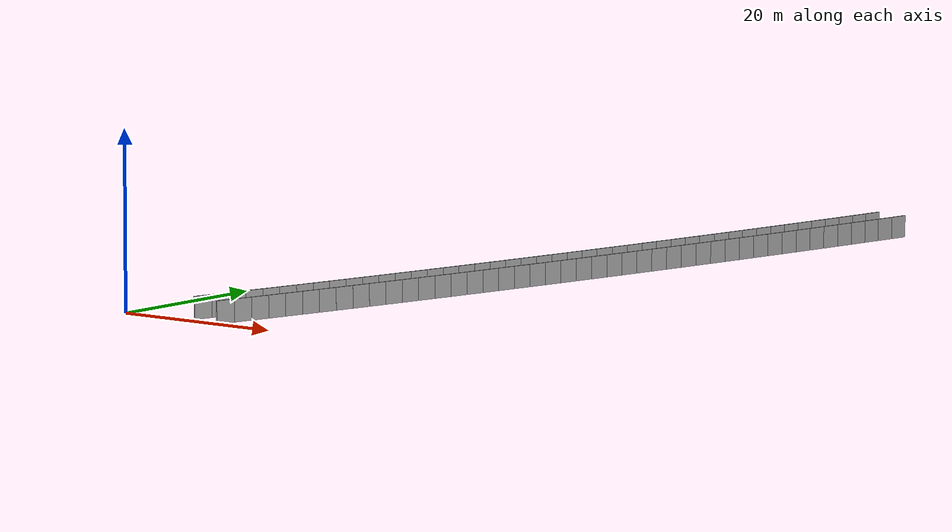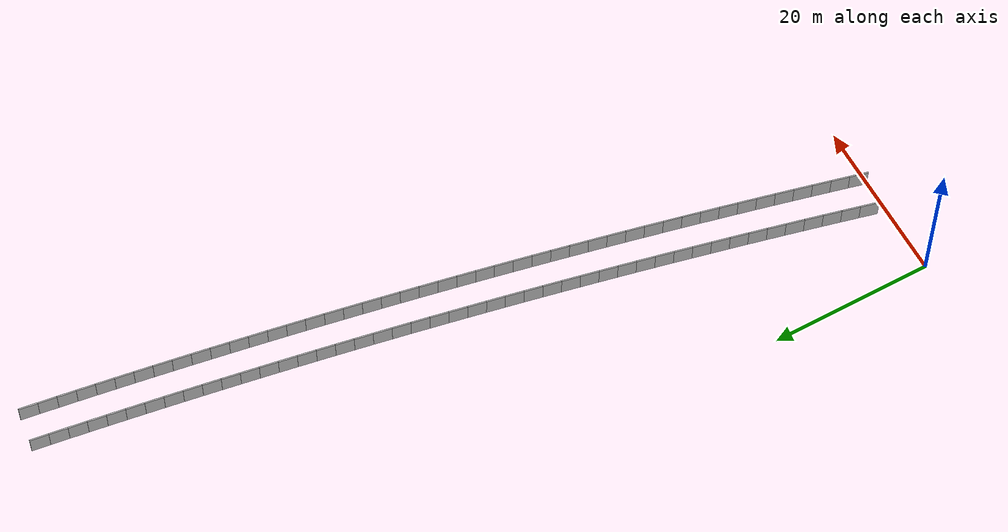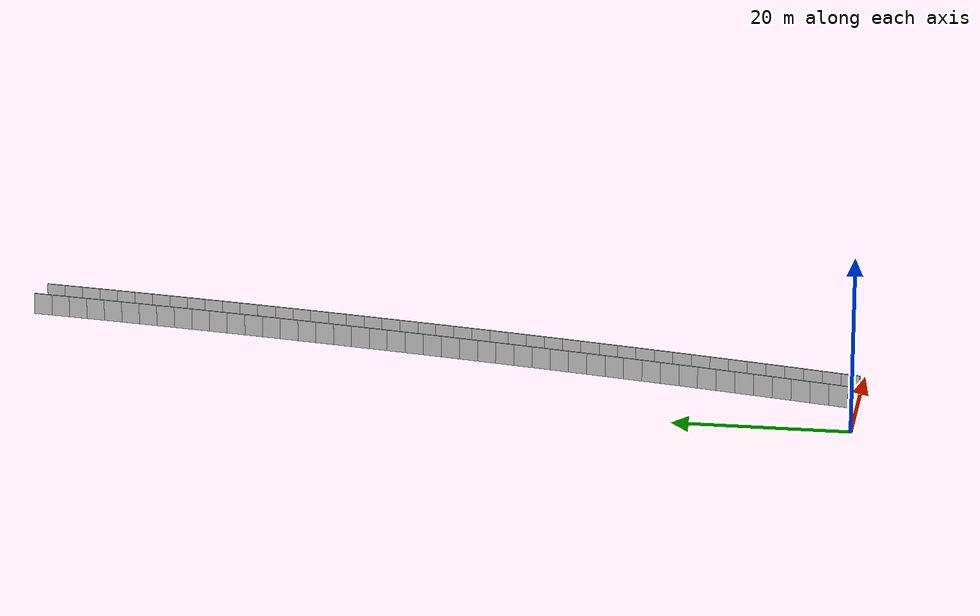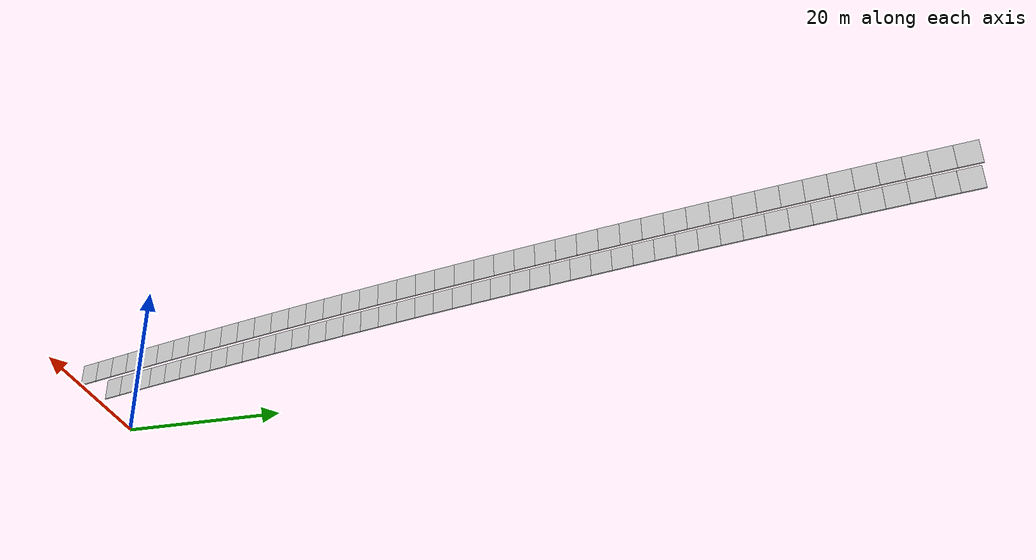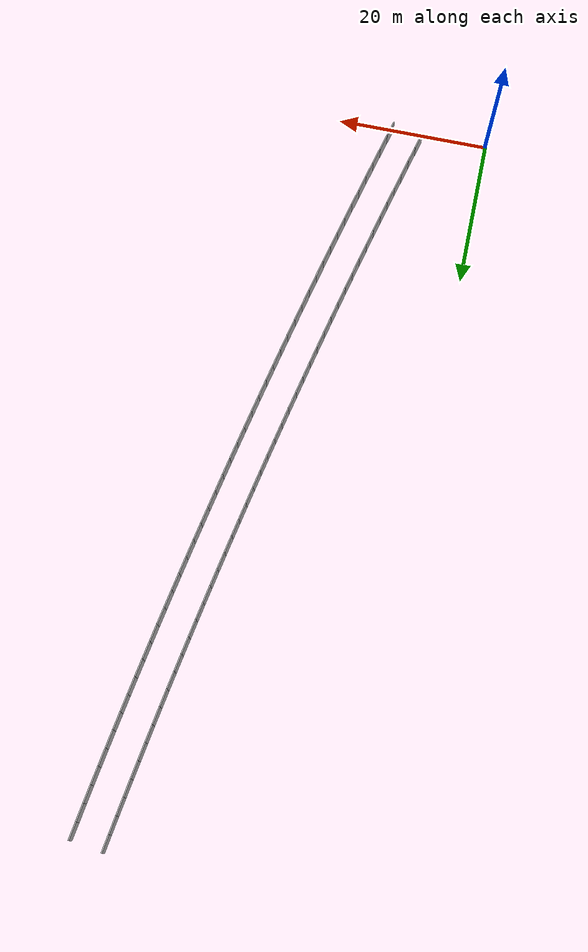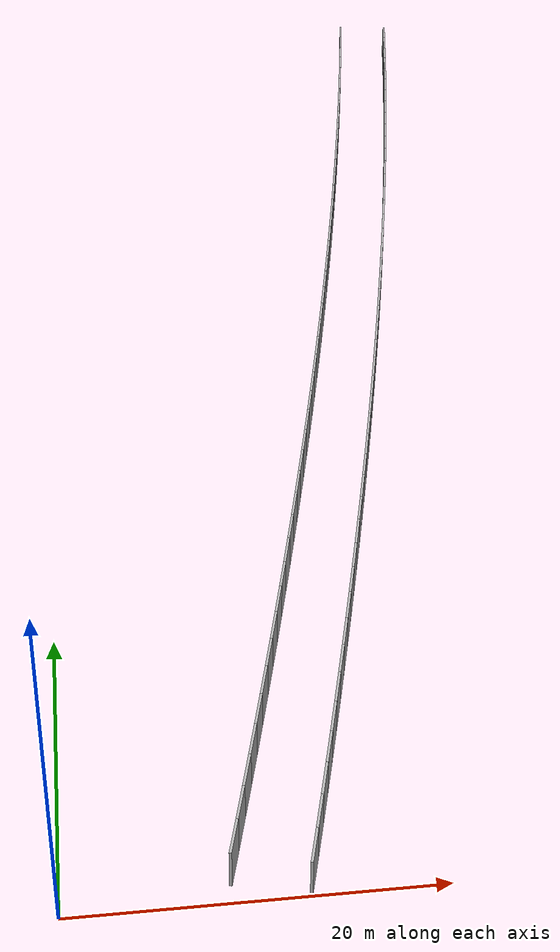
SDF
<?xml version="1.0" ?>
<sdf version="1.6">
  <model name="sps_2310">
    <pose frame="">0 0 0 0 -0 0</pose>
    <static>1</static>
    <self_collide>0</self_collide>
    <allow_auto_disable>0</allow_auto_disable>
    <link name="Wall4482">
      <kinematic>0</kinematic>
      <gravity>1</gravity>
      <self_collide>0</self_collide>
      <collision name="collision">
        <geometry>
          <box>
            <size>2.25451 0.15 2.5</size>
          </box>
        </geometry>
        <pose frame="">0 0 0 0 -0 0</pose>
      </collision>
      <visual name="visual">
        <geometry>
          <box>
            <size>2.25451 0.15 2.5</size>
          </box>
        </geometry>
        <pose frame="">0 0 0 0 -0 0</pose>
        <cast_shadows>1</cast_shadows>
        <transparency>0.0</transparency>
      </visual>
      <pose frame="">13.0137 1.14418 1.25 0 -0 1.32106</pose>
    </link>
    <link name="Wall4483">
      <kinematic>0</kinematic>
      <gravity>1</gravity>
      <self_collide>0</self_collide>
      <collision name="collision">
        <geometry>
          <box>
            <size>2.25465 0.15 2.5</size>
          </box>
        </geometry>
        <pose frame="">0 0 0 0 -0 0</pose>
      </collision>
      <visual name="visual">
        <geometry>
          <box>
            <size>2.25465 0.15 2.5</size>
          </box>
        </geometry>
        <pose frame="">0 0 0 0 -0 0</pose>
        <cast_shadows>1</cast_shadows>
        <transparency>0.0</transparency>
      </visual>
      <pose frame="">13.5683 3.32948 1.25 0 -0 1.32345</pose>
    </link>
    <link name="Wall4484">
      <kinematic>0</kinematic>
      <gravity>1</gravity>
      <self_collide>0</self_collide>
      <collision name="collision">
        <geometry>
          <box>
            <size>2.25473 0.15 2.5</size>
          </box>
        </geometry>
        <pose frame="">0 0 0 0 -0 0</pose>
      </collision>
      <visual name="visual">
        <geometry>
          <box>
            <size>2.25473 0.15 2.5</size>
          </box>
        </geometry>
        <pose frame="">0 0 0 0 -0 0</pose>
        <cast_shadows>1</cast_shadows>
        <transparency>0.0</transparency>
      </visual>
      <pose frame="">14.1178 5.51619 1.25 0 -0 1.32575</pose>
    </link>
    <link name="Wall4485">
      <kinematic>0</kinematic>
      <gravity>1</gravity>
      <self_collide>0</self_collide>
      <collision name="collision">
        <geometry>
          <box>
            <size>2.25462 0.15 2.5</size>
          </box>
        </geometry>
        <pose frame="">0 0 0 0 -0 0</pose>
      </collision>
      <visual name="visual">
        <geometry>
          <box>
            <size>2.25462 0.15 2.5</size>
          </box>
        </geometry>
        <pose frame="">0 0 0 0 -0 0</pose>
        <cast_shadows>1</cast_shadows>
        <transparency>0.0</transparency>
      </visual>
      <pose frame="">14.6621 7.70418 1.25 0 -0 1.32819</pose>
    </link>
    <link name="Wall4486">
      <kinematic>0</kinematic>
      <gravity>1</gravity>
      <self_collide>0</self_collide>
      <collision name="collision">
        <geometry>
          <box>
            <size>2.25455 0.15 2.5</size>
          </box>
        </geometry>
        <pose frame="">0 0 0 0 -0 0</pose>
      </collision>
      <visual name="visual">
        <geometry>
          <box>
            <size>2.25455 0.15 2.5</size>
          </box>
        </geometry>
        <pose frame="">0 0 0 0 -0 0</pose>
        <cast_shadows>1</cast_shadows>
        <transparency>0.0</transparency>
      </visual>
      <pose frame="">15.2011 9.89339 1.25 0 -0 1.33058</pose>
    </link>
    <link name="Wall4487">
      <kinematic>0</kinematic>
      <gravity>1</gravity>
      <self_collide>0</self_collide>
      <collision name="collision">
        <geometry>
          <box>
            <size>2.25445 0.15 2.5</size>
          </box>
        </geometry>
        <pose frame="">0 0 0 0 -0 0</pose>
      </collision>
      <visual name="visual">
        <geometry>
          <box>
            <size>2.25445 0.15 2.5</size>
          </box>
        </geometry>
        <pose frame="">0 0 0 0 -0 0</pose>
        <cast_shadows>1</cast_shadows>
        <transparency>0.0</transparency>
      </visual>
      <pose frame="">15.7349 12.0838 1.25 0 -0 1.33294</pose>
    </link>
    <link name="Wall4488">
      <kinematic>0</kinematic>
      <gravity>1</gravity>
      <self_collide>0</self_collide>
      <collision name="collision">
        <geometry>
          <box>
            <size>2.2547 0.15 2.5</size>
          </box>
        </geometry>
        <pose frame="">0 0 0 0 -0 0</pose>
      </collision>
      <visual name="visual">
        <geometry>
          <box>
            <size>2.2547 0.15 2.5</size>
          </box>
        </geometry>
        <pose frame="">0 0 0 0 -0 0</pose>
        <cast_shadows>1</cast_shadows>
        <transparency>0.0</transparency>
      </visual>
      <pose frame="">16.2635 14.2755 1.25 0 -0 1.33525</pose>
    </link>
    <link name="Wall4489">
      <kinematic>0</kinematic>
      <gravity>1</gravity>
      <self_collide>0</self_collide>
      <collision name="collision">
        <geometry>
          <box>
            <size>2.25462 0.15 2.5</size>
          </box>
        </geometry>
        <pose frame="">0 0 0 0 -0 0</pose>
      </collision>
      <visual name="visual">
        <geometry>
          <box>
            <size>2.25462 0.15 2.5</size>
          </box>
        </geometry>
        <pose frame="">0 0 0 0 -0 0</pose>
        <cast_shadows>1</cast_shadows>
        <transparency>0.0</transparency>
      </visual>
      <pose frame="">16.7871 16.4685 1.25 0 -0 1.33761</pose>
    </link>
    <link name="Wall4490">
      <kinematic>0</kinematic>
      <gravity>1</gravity>
      <self_collide>0</self_collide>
      <collision name="collision">
        <geometry>
          <box>
            <size>2.25466 0.15 2.5</size>
          </box>
        </geometry>
        <pose frame="">0 0 0 0 -0 0</pose>
      </collision>
      <visual name="visual">
        <geometry>
          <box>
            <size>2.25466 0.15 2.5</size>
          </box>
        </geometry>
        <pose frame="">0 0 0 0 -0 0</pose>
        <cast_shadows>1</cast_shadows>
        <transparency>0.0</transparency>
      </visual>
      <pose frame="">17.3054 18.6628 1.25 0 -0 1.34014</pose>
    </link>
    <link name="Wall4491">
      <kinematic>0</kinematic>
      <gravity>1</gravity>
      <self_collide>0</self_collide>
      <collision name="collision">
        <geometry>
          <box>
            <size>2.25461 0.15 2.5</size>
          </box>
        </geometry>
        <pose frame="">0 0 0 0 -0 0</pose>
      </collision>
      <visual name="visual">
        <geometry>
          <box>
            <size>2.25461 0.15 2.5</size>
          </box>
        </geometry>
        <pose frame="">0 0 0 0 -0 0</pose>
        <cast_shadows>1</cast_shadows>
        <transparency>0.0</transparency>
      </visual>
      <pose frame="">17.8184 20.8583 1.25 0 -0 1.34236</pose>
    </link>
    <link name="Wall4492">
      <kinematic>0</kinematic>
      <gravity>1</gravity>
      <self_collide>0</self_collide>
      <collision name="collision">
        <geometry>
          <box>
            <size>2.25455 0.15 2.5</size>
          </box>
        </geometry>
        <pose frame="">0 0 0 0 -0 0</pose>
      </collision>
      <visual name="visual">
        <geometry>
          <box>
            <size>2.25455 0.15 2.5</size>
          </box>
        </geometry>
        <pose frame="">0 0 0 0 -0 0</pose>
        <cast_shadows>1</cast_shadows>
        <transparency>0.0</transparency>
      </visual>
      <pose frame="">18.3263 23.0549 1.25 0 -0 1.34477</pose>
    </link>
    <link name="Wall4493">
      <kinematic>0</kinematic>
      <gravity>1</gravity>
      <self_collide>0</self_collide>
      <collision name="collision">
        <geometry>
          <box>
            <size>2.25445 0.15 2.5</size>
          </box>
        </geometry>
        <pose frame="">0 0 0 0 -0 0</pose>
      </collision>
      <visual name="visual">
        <geometry>
          <box>
            <size>2.25445 0.15 2.5</size>
          </box>
        </geometry>
        <pose frame="">0 0 0 0 -0 0</pose>
        <cast_shadows>1</cast_shadows>
        <transparency>0.0</transparency>
      </visual>
      <pose frame="">18.8288 25.2527 1.25 0 -0 1.34726</pose>
    </link>
    <link name="Wall4494">
      <kinematic>0</kinematic>
      <gravity>1</gravity>
      <self_collide>0</self_collide>
      <collision name="collision">
        <geometry>
          <box>
            <size>2.25479 0.15 2.5</size>
          </box>
        </geometry>
        <pose frame="">0 0 0 0 -0 0</pose>
      </collision>
      <visual name="visual">
        <geometry>
          <box>
            <size>2.25479 0.15 2.5</size>
          </box>
        </geometry>
        <pose frame="">0 0 0 0 -0 0</pose>
        <cast_shadows>1</cast_shadows>
        <transparency>0.0</transparency>
      </visual>
      <pose frame="">19.326 27.4518 1.25 0 -0 1.34955</pose>
    </link>
    <link name="Wall4495">
      <kinematic>0</kinematic>
      <gravity>1</gravity>
      <self_collide>0</self_collide>
      <collision name="collision">
        <geometry>
          <box>
            <size>2.25461 0.15 2.5</size>
          </box>
        </geometry>
        <pose frame="">0 0 0 0 -0 0</pose>
      </collision>
      <visual name="visual">
        <geometry>
          <box>
            <size>2.25461 0.15 2.5</size>
          </box>
        </geometry>
        <pose frame="">0 0 0 0 -0 0</pose>
        <cast_shadows>1</cast_shadows>
        <transparency>0.0</transparency>
      </visual>
      <pose frame="">19.8183 29.6521 1.25 0 -0 1.35189</pose>
    </link>
    <link name="Wall4496">
      <kinematic>0</kinematic>
      <gravity>1</gravity>
      <self_collide>0</self_collide>
      <collision name="collision">
        <geometry>
          <box>
            <size>2.25461 0.15 2.5</size>
          </box>
        </geometry>
        <pose frame="">0 0 0 0 -0 0</pose>
      </collision>
      <visual name="visual">
        <geometry>
          <box>
            <size>2.25461 0.15 2.5</size>
          </box>
        </geometry>
        <pose frame="">0 0 0 0 -0 0</pose>
        <cast_shadows>1</cast_shadows>
        <transparency>0.0</transparency>
      </visual>
      <pose frame="">20.3053 31.8535 1.25 0 -0 1.35427</pose>
    </link>
    <link name="Wall4497">
      <kinematic>0</kinematic>
      <gravity>1</gravity>
      <self_collide>0</self_collide>
      <collision name="collision">
        <geometry>
          <box>
            <size>2.25469 0.15 2.5</size>
          </box>
        </geometry>
        <pose frame="">0 0 0 0 -0 0</pose>
      </collision>
      <visual name="visual">
        <geometry>
          <box>
            <size>2.25469 0.15 2.5</size>
          </box>
        </geometry>
        <pose frame="">0 0 0 0 -0 0</pose>
        <cast_shadows>1</cast_shadows>
        <transparency>0.0</transparency>
      </visual>
      <pose frame="">20.787 34.0561 1.25 0 -0 1.35663</pose>
    </link>
    <link name="Wall4498">
      <kinematic>0</kinematic>
      <gravity>1</gravity>
      <self_collide>0</self_collide>
      <collision name="collision">
        <geometry>
          <box>
            <size>2.25454 0.15 2.5</size>
          </box>
        </geometry>
        <pose frame="">0 0 0 0 -0 0</pose>
      </collision>
      <visual name="visual">
        <geometry>
          <box>
            <size>2.25454 0.15 2.5</size>
          </box>
        </geometry>
        <pose frame="">0 0 0 0 -0 0</pose>
        <cast_shadows>1</cast_shadows>
        <transparency>0.0</transparency>
      </visual>
      <pose frame="">21.2634 36.2598 1.25 0 -0 1.35914</pose>
    </link>
    <link name="Wall4499">
      <kinematic>0</kinematic>
      <gravity>1</gravity>
      <self_collide>0</self_collide>
      <collision name="collision">
        <geometry>
          <box>
            <size>2.25461 0.15 2.5</size>
          </box>
        </geometry>
        <pose frame="">0 0 0 0 -0 0</pose>
      </collision>
      <visual name="visual">
        <geometry>
          <box>
            <size>2.25461 0.15 2.5</size>
          </box>
        </geometry>
        <pose frame="">0 0 0 0 -0 0</pose>
        <cast_shadows>1</cast_shadows>
        <transparency>0.0</transparency>
      </visual>
      <pose frame="">21.7345 38.4646 1.25 0 -0 1.36144</pose>
    </link>
    <link name="Wall4500">
      <kinematic>0</kinematic>
      <gravity>1</gravity>
      <self_collide>0</self_collide>
      <collision name="collision">
        <geometry>
          <box>
            <size>2.25452 0.15 2.5</size>
          </box>
        </geometry>
        <pose frame="">0 0 0 0 -0 0</pose>
      </collision>
      <visual name="visual">
        <geometry>
          <box>
            <size>2.25452 0.15 2.5</size>
          </box>
        </geometry>
        <pose frame="">0 0 0 0 -0 0</pose>
        <cast_shadows>1</cast_shadows>
        <transparency>0.0</transparency>
      </visual>
      <pose frame="">22.2004 40.6705 1.25 0 -0 1.36387</pose>
    </link>
    <link name="Wall4501">
      <kinematic>0</kinematic>
      <gravity>1</gravity>
      <self_collide>0</self_collide>
      <collision name="collision">
        <geometry>
          <box>
            <size>2.25488 0.15 2.5</size>
          </box>
        </geometry>
        <pose frame="">0 0 0 0 -0 0</pose>
      </collision>
      <visual name="visual">
        <geometry>
          <box>
            <size>2.25488 0.15 2.5</size>
          </box>
        </geometry>
        <pose frame="">0 0 0 0 -0 0</pose>
        <cast_shadows>1</cast_shadows>
        <transparency>0.0</transparency>
      </visual>
      <pose frame="">22.6612 42.8776 1.25 0 -0 1.36614</pose>
    </link>
    <link name="Wall4502">
      <kinematic>0</kinematic>
      <gravity>1</gravity>
      <self_collide>0</self_collide>
      <collision name="collision">
        <geometry>
          <box>
            <size>2.25449 0.15 2.5</size>
          </box>
        </geometry>
        <pose frame="">0 0 0 0 -0 0</pose>
      </collision>
      <visual name="visual">
        <geometry>
          <box>
            <size>2.25449 0.15 2.5</size>
          </box>
        </geometry>
        <pose frame="">0 0 0 0 -0 0</pose>
        <cast_shadows>1</cast_shadows>
        <transparency>0.0</transparency>
      </visual>
      <pose frame="">23.1167 45.0858 1.25 0 -0 1.3686</pose>
    </link>
    <link name="Wall4503">
      <kinematic>0</kinematic>
      <gravity>1</gravity>
      <self_collide>0</self_collide>
      <collision name="collision">
        <geometry>
          <box>
            <size>2.25448 0.15 2.5</size>
          </box>
        </geometry>
        <pose frame="">0 0 0 0 -0 0</pose>
      </collision>
      <visual name="visual">
        <geometry>
          <box>
            <size>2.25448 0.15 2.5</size>
          </box>
        </geometry>
        <pose frame="">0 0 0 0 -0 0</pose>
        <cast_shadows>1</cast_shadows>
        <transparency>0.0</transparency>
      </visual>
      <pose frame="">23.5669 47.2949 1.25 0 -0 1.37092</pose>
    </link>
    <link name="Wall4504">
      <kinematic>0</kinematic>
      <gravity>1</gravity>
      <self_collide>0</self_collide>
      <collision name="collision">
        <geometry>
          <box>
            <size>2.25486 0.15 2.5</size>
          </box>
        </geometry>
        <pose frame="">0 0 0 0 -0 0</pose>
      </collision>
      <visual name="visual">
        <geometry>
          <box>
            <size>2.25486 0.15 2.5</size>
          </box>
        </geometry>
        <pose frame="">0 0 0 0 -0 0</pose>
        <cast_shadows>1</cast_shadows>
        <transparency>0.0</transparency>
      </visual>
      <pose frame="">24.012 49.5052 1.25 0 -0 1.37324</pose>
    </link>
    <link name="Wall4505">
      <kinematic>0</kinematic>
      <gravity>1</gravity>
      <self_collide>0</self_collide>
      <collision name="collision">
        <geometry>
          <box>
            <size>2.25437 0.15 2.5</size>
          </box>
        </geometry>
        <pose frame="">0 0 0 0 -0 0</pose>
      </collision>
      <visual name="visual">
        <geometry>
          <box>
            <size>2.25437 0.15 2.5</size>
          </box>
        </geometry>
        <pose frame="">0 0 0 0 -0 0</pose>
        <cast_shadows>1</cast_shadows>
        <transparency>0.0</transparency>
      </visual>
      <pose frame="">24.4517 51.7165 1.25 0 -0 1.37571</pose>
    </link>
    <link name="Wall4506">
      <kinematic>0</kinematic>
      <gravity>1</gravity>
      <self_collide>0</self_collide>
      <collision name="collision">
        <geometry>
          <box>
            <size>2.25475 0.15 2.5</size>
          </box>
        </geometry>
        <pose frame="">0 0 0 0 -0 0</pose>
      </collision>
      <visual name="visual">
        <geometry>
          <box>
            <size>2.25475 0.15 2.5</size>
          </box>
        </geometry>
        <pose frame="">0 0 0 0 -0 0</pose>
        <cast_shadows>1</cast_shadows>
        <transparency>0.0</transparency>
      </visual>
      <pose frame="">24.8862 53.9288 1.25 0 -0 1.37809</pose>
    </link>
    <link name="Wall4507">
      <kinematic>0</kinematic>
      <gravity>1</gravity>
      <self_collide>0</self_collide>
      <collision name="collision">
        <geometry>
          <box>
            <size>2.25467 0.15 2.5</size>
          </box>
        </geometry>
        <pose frame="">0 0 0 0 -0 0</pose>
      </collision>
      <visual name="visual">
        <geometry>
          <box>
            <size>2.25467 0.15 2.5</size>
          </box>
        </geometry>
        <pose frame="">0 0 0 0 -0 0</pose>
        <cast_shadows>1</cast_shadows>
        <transparency>0.0</transparency>
      </visual>
      <pose frame="">25.3153 56.1423 1.25 0 -0 1.38054</pose>
    </link>
    <link name="Wall4508">
      <kinematic>0</kinematic>
      <gravity>1</gravity>
      <self_collide>0</self_collide>
      <collision name="collision">
        <geometry>
          <box>
            <size>2.25451 0.15 2.5</size>
          </box>
        </geometry>
        <pose frame="">0 0 0 0 -0 0</pose>
      </collision>
      <visual name="visual">
        <geometry>
          <box>
            <size>2.25451 0.15 2.5</size>
          </box>
        </geometry>
        <pose frame="">0 0 0 0 -0 0</pose>
        <cast_shadows>1</cast_shadows>
        <transparency>0.0</transparency>
      </visual>
      <pose frame="">25.7392 58.3567 1.25 0 -0 1.38278</pose>
    </link>
    <link name="Wall4509">
      <kinematic>0</kinematic>
      <gravity>1</gravity>
      <self_collide>0</self_collide>
      <collision name="collision">
        <geometry>
          <box>
            <size>2.25502 0.15 2.5</size>
          </box>
        </geometry>
        <pose frame="">0 0 0 0 -0 0</pose>
      </collision>
      <visual name="visual">
        <geometry>
          <box>
            <size>2.25502 0.15 2.5</size>
          </box>
        </geometry>
        <pose frame="">0 0 0 0 -0 0</pose>
        <cast_shadows>1</cast_shadows>
        <transparency>0.0</transparency>
      </visual>
      <pose frame="">26.158 60.5722 1.25 0 -0 1.38508</pose>
    </link>
    <link name="Wall4510">
      <kinematic>0</kinematic>
      <gravity>1</gravity>
      <self_collide>0</self_collide>
      <collision name="collision">
        <geometry>
          <box>
            <size>2.25472 0.15 2.5</size>
          </box>
        </geometry>
        <pose frame="">0 0 0 0 -0 0</pose>
      </collision>
      <visual name="visual">
        <geometry>
          <box>
            <size>2.25472 0.15 2.5</size>
          </box>
        </geometry>
        <pose frame="">0 0 0 0 -0 0</pose>
        <cast_shadows>1</cast_shadows>
        <transparency>0.0</transparency>
      </visual>
      <pose frame="">26.5716 62.7888 1.25 0 -0 1.38757</pose>
    </link>
    <link name="Wall4511">
      <kinematic>0</kinematic>
      <gravity>1</gravity>
      <self_collide>0</self_collide>
      <collision name="collision">
        <geometry>
          <box>
            <size>2.25452 0.15 2.5</size>
          </box>
        </geometry>
        <pose frame="">0 0 0 0 -0 0</pose>
      </collision>
      <visual name="visual">
        <geometry>
          <box>
            <size>2.25452 0.15 2.5</size>
          </box>
        </geometry>
        <pose frame="">0 0 0 0 -0 0</pose>
        <cast_shadows>1</cast_shadows>
        <transparency>0.0</transparency>
      </visual>
      <pose frame="">26.9798 65.0062 1.25 0 -0 1.39</pose>
    </link>
    <link name="Wall4512">
      <kinematic>0</kinematic>
      <gravity>1</gravity>
      <self_collide>0</self_collide>
      <collision name="collision">
        <geometry>
          <box>
            <size>2.25461 0.15 2.5</size>
          </box>
        </geometry>
        <pose frame="">0 0 0 0 -0 0</pose>
      </collision>
      <visual name="visual">
        <geometry>
          <box>
            <size>2.25461 0.15 2.5</size>
          </box>
        </geometry>
        <pose frame="">0 0 0 0 -0 0</pose>
        <cast_shadows>1</cast_shadows>
        <transparency>0.0</transparency>
      </visual>
      <pose frame="">27.3826 67.2245 1.25 0 -0 1.39234</pose>
    </link>
    <link name="Wall4513">
      <kinematic>0</kinematic>
      <gravity>1</gravity>
      <self_collide>0</self_collide>
      <collision name="collision">
        <geometry>
          <box>
            <size>2.25493 0.15 2.5</size>
          </box>
        </geometry>
        <pose frame="">0 0 0 0 -0 0</pose>
      </collision>
      <visual name="visual">
        <geometry>
          <box>
            <size>2.25493 0.15 2.5</size>
          </box>
        </geometry>
        <pose frame="">0 0 0 0 -0 0</pose>
        <cast_shadows>1</cast_shadows>
        <transparency>0.0</transparency>
      </visual>
      <pose frame="">27.7803 69.4439 1.25 0 -0 1.39463</pose>
    </link>
    <link name="Wall4514">
      <kinematic>0</kinematic>
      <gravity>1</gravity>
      <self_collide>0</self_collide>
      <collision name="collision">
        <geometry>
          <box>
            <size>2.25435 0.15 2.5</size>
          </box>
        </geometry>
        <pose frame="">0 0 0 0 -0 0</pose>
      </collision>
      <visual name="visual">
        <geometry>
          <box>
            <size>2.25435 0.15 2.5</size>
          </box>
        </geometry>
        <pose frame="">0 0 0 0 -0 0</pose>
        <cast_shadows>1</cast_shadows>
        <transparency>0.0</transparency>
      </visual>
      <pose frame="">28.1728 71.6641 1.25 0 -0 1.39703</pose>
    </link>
    <link name="Wall4515">
      <kinematic>0</kinematic>
      <gravity>1</gravity>
      <self_collide>0</self_collide>
      <collision name="collision">
        <geometry>
          <box>
            <size>2.25454 0.15 2.5</size>
          </box>
        </geometry>
        <pose frame="">0 0 0 0 -0 0</pose>
      </collision>
      <visual name="visual">
        <geometry>
          <box>
            <size>2.25454 0.15 2.5</size>
          </box>
        </geometry>
        <pose frame="">0 0 0 0 -0 0</pose>
        <cast_shadows>1</cast_shadows>
        <transparency>0.0</transparency>
      </visual>
      <pose frame="">28.5597 73.8851 1.25 0 -0 1.39954</pose>
    </link>
    <link name="Wall4516">
      <kinematic>0</kinematic>
      <gravity>1</gravity>
      <self_collide>0</self_collide>
      <collision name="collision">
        <geometry>
          <box>
            <size>2.25477 0.15 2.5</size>
          </box>
        </geometry>
        <pose frame="">0 0 0 0 -0 0</pose>
      </collision>
      <visual name="visual">
        <geometry>
          <box>
            <size>2.25477 0.15 2.5</size>
          </box>
        </geometry>
        <pose frame="">0 0 0 0 -0 0</pose>
        <cast_shadows>1</cast_shadows>
        <transparency>0.0</transparency>
      </visual>
      <pose frame="">28.9415 76.1072 1.25 0 -0 1.40181</pose>
    </link>
    <link name="Wall4517">
      <kinematic>0</kinematic>
      <gravity>1</gravity>
      <self_collide>0</self_collide>
      <collision name="collision">
        <geometry>
          <box>
            <size>2.25459 0.15 2.5</size>
          </box>
        </geometry>
        <pose frame="">0 0 0 0 -0 0</pose>
      </collision>
      <visual name="visual">
        <geometry>
          <box>
            <size>2.25459 0.15 2.5</size>
          </box>
        </geometry>
        <pose frame="">0 0 0 0 -0 0</pose>
        <cast_shadows>1</cast_shadows>
        <transparency>0.0</transparency>
      </visual>
      <pose frame="">29.318 78.3302 1.25 0 -0 1.40424</pose>
    </link>
    <link name="Wall4518">
      <kinematic>0</kinematic>
      <gravity>1</gravity>
      <self_collide>0</self_collide>
      <collision name="collision">
        <geometry>
          <box>
            <size>2.2547 0.15 2.5</size>
          </box>
        </geometry>
        <pose frame="">0 0 0 0 -0 0</pose>
      </collision>
      <visual name="visual">
        <geometry>
          <box>
            <size>2.2547 0.15 2.5</size>
          </box>
        </geometry>
        <pose frame="">0 0 0 0 -0 0</pose>
        <cast_shadows>1</cast_shadows>
        <transparency>0.0</transparency>
      </visual>
      <pose frame="">29.6891 80.5541 1.25 0 -0 1.40658</pose>
    </link>
    <link name="Wall4519">
      <kinematic>0</kinematic>
      <gravity>1</gravity>
      <self_collide>0</self_collide>
      <collision name="collision">
        <geometry>
          <box>
            <size>2.2547 0.15 2.5</size>
          </box>
        </geometry>
        <pose frame="">0 0 0 0 -0 0</pose>
      </collision>
      <visual name="visual">
        <geometry>
          <box>
            <size>2.2547 0.15 2.5</size>
          </box>
        </geometry>
        <pose frame="">0 0 0 0 -0 0</pose>
        <cast_shadows>1</cast_shadows>
        <transparency>0.0</transparency>
      </visual>
      <pose frame="">30.0551 82.7789 1.25 0 -0 1.40891</pose>
    </link>
    <link name="Wall4520">
      <kinematic>0</kinematic>
      <gravity>1</gravity>
      <self_collide>0</self_collide>
      <collision name="collision">
        <geometry>
          <box>
            <size>2.25458 0.15 2.5</size>
          </box>
        </geometry>
        <pose frame="">0 0 0 0 -0 0</pose>
      </collision>
      <visual name="visual">
        <geometry>
          <box>
            <size>2.25458 0.15 2.5</size>
          </box>
        </geometry>
        <pose frame="">0 0 0 0 -0 0</pose>
        <cast_shadows>1</cast_shadows>
        <transparency>0.0</transparency>
      </visual>
      <pose frame="">30.4157 85.0045 1.25 0 -0 1.41143</pose>
    </link>
    <link name="Wall4521">
      <kinematic>0</kinematic>
      <gravity>1</gravity>
      <self_collide>0</self_collide>
      <collision name="collision">
        <geometry>
          <box>
            <size>2.25459 0.15 2.5</size>
          </box>
        </geometry>
        <pose frame="">0 0 0 0 -0 0</pose>
      </collision>
      <visual name="visual">
        <geometry>
          <box>
            <size>2.25459 0.15 2.5</size>
          </box>
        </geometry>
        <pose frame="">0 0 0 0 -0 0</pose>
        <cast_shadows>1</cast_shadows>
        <transparency>0.0</transparency>
      </visual>
      <pose frame="">30.771 87.2309 1.25 0 -0 1.41365</pose>
    </link>
    <link name="Wall4522">
      <kinematic>0</kinematic>
      <gravity>1</gravity>
      <self_collide>0</self_collide>
      <collision name="collision">
        <geometry>
          <box>
            <size>2.25453 0.15 2.5</size>
          </box>
        </geometry>
        <pose frame="">0 0 0 0 -0 0</pose>
      </collision>
      <visual name="visual">
        <geometry>
          <box>
            <size>2.25453 0.15 2.5</size>
          </box>
        </geometry>
        <pose frame="">0 0 0 0 -0 0</pose>
        <cast_shadows>1</cast_shadows>
        <transparency>0.0</transparency>
      </visual>
      <pose frame="">31.1212 89.4581 1.25 0 -0 1.41608</pose>
    </link>
    <link name="Wall4523">
      <kinematic>0</kinematic>
      <gravity>1</gravity>
      <self_collide>0</self_collide>
      <collision name="collision">
        <geometry>
          <box>
            <size>2.25487 0.15 2.5</size>
          </box>
        </geometry>
        <pose frame="">0 0 0 0 -0 0</pose>
      </collision>
      <visual name="visual">
        <geometry>
          <box>
            <size>2.25487 0.15 2.5</size>
          </box>
        </geometry>
        <pose frame="">0 0 0 0 -0 0</pose>
        <cast_shadows>1</cast_shadows>
        <transparency>0.0</transparency>
      </visual>
      <pose frame="">31.466 91.6863 1.25 0 -0 1.41846</pose>
    </link>
    <link name="Wall4524">
      <kinematic>0</kinematic>
      <gravity>1</gravity>
      <self_collide>0</self_collide>
      <collision name="collision">
        <geometry>
          <box>
            <size>2.25455 0.15 2.5</size>
          </box>
        </geometry>
        <pose frame="">0 0 0 0 -0 0</pose>
      </collision>
      <visual name="visual">
        <geometry>
          <box>
            <size>2.25455 0.15 2.5</size>
          </box>
        </geometry>
        <pose frame="">0 0 0 0 -0 0</pose>
        <cast_shadows>1</cast_shadows>
        <transparency>0.0</transparency>
      </visual>
      <pose frame="">31.8054 93.9153 1.25 0 -0 1.42085</pose>
    </link>
    <link name="Wall4525">
      <kinematic>0</kinematic>
      <gravity>1</gravity>
      <self_collide>0</self_collide>
      <collision name="collision">
        <geometry>
          <box>
            <size>2.25447 0.15 2.5</size>
          </box>
        </geometry>
        <pose frame="">0 0 0 0 -0 0</pose>
      </collision>
      <visual name="visual">
        <geometry>
          <box>
            <size>2.25447 0.15 2.5</size>
          </box>
        </geometry>
        <pose frame="">0 0 0 0 -0 0</pose>
        <cast_shadows>1</cast_shadows>
        <transparency>0.0</transparency>
      </visual>
      <pose frame="">32.1395 96.1449 1.25 0 -0 1.42326</pose>
    </link>
    <link name="Wall4526">
      <kinematic>0</kinematic>
      <gravity>1</gravity>
      <self_collide>0</self_collide>
      <collision name="collision">
        <geometry>
          <box>
            <size>2.25473 0.15 2.5</size>
          </box>
        </geometry>
        <pose frame="">0 0 0 0 -0 0</pose>
      </collision>
      <visual name="visual">
        <geometry>
          <box>
            <size>2.25473 0.15 2.5</size>
          </box>
        </geometry>
        <pose frame="">0 0 0 0 -0 0</pose>
        <cast_shadows>1</cast_shadows>
        <transparency>0.0</transparency>
      </visual>
      <pose frame="">32.4683 98.3754 1.25 0 -0 1.42563</pose>
    </link>
    <link name="Wall6207">
      <kinematic>0</kinematic>
      <gravity>1</gravity>
      <self_collide>0</self_collide>
      <collision name="collision">
        <geometry>
          <box>
            <size>2.24463 0.15 2.5</size>
          </box>
        </geometry>
        <pose frame="">0 0 0 0 -0 0</pose>
      </collision>
      <visual name="visual">
        <geometry>
          <box>
            <size>2.24463 0.15 2.5</size>
          </box>
        </geometry>
        <pose frame="">0 0 0 0 -0 0</pose>
        <cast_shadows>1</cast_shadows>
        <transparency>0.0</transparency>
      </visual>
      <pose frame="">9.00265 2.1674 1.25 0 -0 1.32104</pose>
    </link>
    <link name="Wall6208">
      <kinematic>0</kinematic>
      <gravity>1</gravity>
      <self_collide>0</self_collide>
      <collision name="collision">
        <geometry>
          <box>
            <size>2.24494 0.15 2.5</size>
          </box>
        </geometry>
        <pose frame="">0 0 0 0 -0 0</pose>
      </collision>
      <visual name="visual">
        <geometry>
          <box>
            <size>2.24494 0.15 2.5</size>
          </box>
        </geometry>
        <pose frame="">0 0 0 0 -0 0</pose>
        <cast_shadows>1</cast_shadows>
        <transparency>0.0</transparency>
      </visual>
      <pose frame="">9.55495 4.34318 1.25 0 -0 1.32337</pose>
    </link>
    <link name="Wall6209">
      <kinematic>0</kinematic>
      <gravity>1</gravity>
      <self_collide>0</self_collide>
      <collision name="collision">
        <geometry>
          <box>
            <size>2.2448 0.15 2.5</size>
          </box>
        </geometry>
        <pose frame="">0 0 0 0 -0 0</pose>
      </collision>
      <visual name="visual">
        <geometry>
          <box>
            <size>2.2448 0.15 2.5</size>
          </box>
        </geometry>
        <pose frame="">0 0 0 0 -0 0</pose>
        <cast_shadows>1</cast_shadows>
        <transparency>0.0</transparency>
      </visual>
      <pose frame="">10.102 6.52037 1.25 0 -0 1.32585</pose>
    </link>
    <link name="Wall6210">
      <kinematic>0</kinematic>
      <gravity>1</gravity>
      <self_collide>0</self_collide>
      <collision name="collision">
        <geometry>
          <box>
            <size>2.24479 0.15 2.5</size>
          </box>
        </geometry>
        <pose frame="">0 0 0 0 -0 0</pose>
      </collision>
      <visual name="visual">
        <geometry>
          <box>
            <size>2.24479 0.15 2.5</size>
          </box>
        </geometry>
        <pose frame="">0 0 0 0 -0 0</pose>
        <cast_shadows>1</cast_shadows>
        <transparency>0.0</transparency>
      </visual>
      <pose frame="">10.6439 8.69878 1.25 0 -0 1.32812</pose>
    </link>
    <link name="Wall6211">
      <kinematic>0</kinematic>
      <gravity>1</gravity>
      <self_collide>0</self_collide>
      <collision name="collision">
        <geometry>
          <box>
            <size>2.24472 0.15 2.5</size>
          </box>
        </geometry>
        <pose frame="">0 0 0 0 -0 0</pose>
      </collision>
      <visual name="visual">
        <geometry>
          <box>
            <size>2.24472 0.15 2.5</size>
          </box>
        </geometry>
        <pose frame="">0 0 0 0 -0 0</pose>
        <cast_shadows>1</cast_shadows>
        <transparency>0.0</transparency>
      </visual>
      <pose frame="">11.1807 10.8784 1.25 0 -0 1.33052</pose>
    </link>
    <link name="Wall6212">
      <kinematic>0</kinematic>
      <gravity>1</gravity>
      <self_collide>0</self_collide>
      <collision name="collision">
        <geometry>
          <box>
            <size>2.2448 0.15 2.5</size>
          </box>
        </geometry>
        <pose frame="">0 0 0 0 -0 0</pose>
      </collision>
      <visual name="visual">
        <geometry>
          <box>
            <size>2.2448 0.15 2.5</size>
          </box>
        </geometry>
        <pose frame="">0 0 0 0 -0 0</pose>
        <cast_shadows>1</cast_shadows>
        <transparency>0.0</transparency>
      </visual>
      <pose frame="">11.7123 13.0593 1.25 0 -0 1.33291</pose>
    </link>
    <link name="Wall6213">
      <kinematic>0</kinematic>
      <gravity>1</gravity>
      <self_collide>0</self_collide>
      <collision name="collision">
        <geometry>
          <box>
            <size>2.24477 0.15 2.5</size>
          </box>
        </geometry>
        <pose frame="">0 0 0 0 -0 0</pose>
      </collision>
      <visual name="visual">
        <geometry>
          <box>
            <size>2.24477 0.15 2.5</size>
          </box>
        </geometry>
        <pose frame="">0 0 0 0 -0 0</pose>
        <cast_shadows>1</cast_shadows>
        <transparency>0.0</transparency>
      </visual>
      <pose frame="">12.2387 15.2415 1.25 0 -0 1.33528</pose>
    </link>
    <link name="Wall6214">
      <kinematic>0</kinematic>
      <gravity>1</gravity>
      <self_collide>0</self_collide>
      <collision name="collision">
        <geometry>
          <box>
            <size>2.24471 0.15 2.5</size>
          </box>
        </geometry>
        <pose frame="">0 0 0 0 -0 0</pose>
      </collision>
      <visual name="visual">
        <geometry>
          <box>
            <size>2.24471 0.15 2.5</size>
          </box>
        </geometry>
        <pose frame="">0 0 0 0 -0 0</pose>
        <cast_shadows>1</cast_shadows>
        <transparency>0.0</transparency>
      </visual>
      <pose frame="">12.7598 17.4249 1.25 0 -0 1.33773</pose>
    </link>
    <link name="Wall6215">
      <kinematic>0</kinematic>
      <gravity>1</gravity>
      <self_collide>0</self_collide>
      <collision name="collision">
        <geometry>
          <box>
            <size>2.24481 0.15 2.5</size>
          </box>
        </geometry>
        <pose frame="">0 0 0 0 -0 0</pose>
      </collision>
      <visual name="visual">
        <geometry>
          <box>
            <size>2.24481 0.15 2.5</size>
          </box>
        </geometry>
        <pose frame="">0 0 0 0 -0 0</pose>
        <cast_shadows>1</cast_shadows>
        <transparency>0.0</transparency>
      </visual>
      <pose frame="">13.2757 19.6096 1.25 0 -0 1.34015</pose>
    </link>
    <link name="Wall6216">
      <kinematic>0</kinematic>
      <gravity>1</gravity>
      <self_collide>0</self_collide>
      <collision name="collision">
        <geometry>
          <box>
            <size>2.24474 0.15 2.5</size>
          </box>
        </geometry>
        <pose frame="">0 0 0 0 -0 0</pose>
      </collision>
      <visual name="visual">
        <geometry>
          <box>
            <size>2.24474 0.15 2.5</size>
          </box>
        </geometry>
        <pose frame="">0 0 0 0 -0 0</pose>
        <cast_shadows>1</cast_shadows>
        <transparency>0.0</transparency>
      </visual>
      <pose frame="">13.7865 21.7955 1.25 0 -0 1.34232</pose>
    </link>
    <link name="Wall6217">
      <kinematic>0</kinematic>
      <gravity>1</gravity>
      <self_collide>0</self_collide>
      <collision name="collision">
        <geometry>
          <box>
            <size>2.24466 0.15 2.5</size>
          </box>
        </geometry>
        <pose frame="">0 0 0 0 -0 0</pose>
      </collision>
      <visual name="visual">
        <geometry>
          <box>
            <size>2.24466 0.15 2.5</size>
          </box>
        </geometry>
        <pose frame="">0 0 0 0 -0 0</pose>
        <cast_shadows>1</cast_shadows>
        <transparency>0.0</transparency>
      </visual>
      <pose frame="">14.2921 23.9825 1.25 0 -0 1.34488</pose>
    </link>
    <link name="Wall6218">
      <kinematic>0</kinematic>
      <gravity>1</gravity>
      <self_collide>0</self_collide>
      <collision name="collision">
        <geometry>
          <box>
            <size>2.2449 0.15 2.5</size>
          </box>
        </geometry>
        <pose frame="">0 0 0 0 -0 0</pose>
      </collision>
      <visual name="visual">
        <geometry>
          <box>
            <size>2.2449 0.15 2.5</size>
          </box>
        </geometry>
        <pose frame="">0 0 0 0 -0 0</pose>
        <cast_shadows>1</cast_shadows>
        <transparency>0.0</transparency>
      </visual>
      <pose frame="">14.7925 26.1708 1.25 0 -0 1.34711</pose>
    </link>
    <link name="Wall6219">
      <kinematic>0</kinematic>
      <gravity>1</gravity>
      <self_collide>0</self_collide>
      <collision name="collision">
        <geometry>
          <box>
            <size>2.24472 0.15 2.5</size>
          </box>
        </geometry>
        <pose frame="">0 0 0 0 -0 0</pose>
      </collision>
      <visual name="visual">
        <geometry>
          <box>
            <size>2.24472 0.15 2.5</size>
          </box>
        </geometry>
        <pose frame="">0 0 0 0 -0 0</pose>
        <cast_shadows>1</cast_shadows>
        <transparency>0.0</transparency>
      </visual>
      <pose frame="">15.2878 28.3603 1.25 0 -0 1.34954</pose>
    </link>
    <link name="Wall6220">
      <kinematic>0</kinematic>
      <gravity>1</gravity>
      <self_collide>0</self_collide>
      <collision name="collision">
        <geometry>
          <box>
            <size>2.24495 0.15 2.5</size>
          </box>
        </geometry>
        <pose frame="">0 0 0 0 -0 0</pose>
      </collision>
      <visual name="visual">
        <geometry>
          <box>
            <size>2.24495 0.15 2.5</size>
          </box>
        </geometry>
        <pose frame="">0 0 0 0 -0 0</pose>
        <cast_shadows>1</cast_shadows>
        <transparency>0.0</transparency>
      </visual>
      <pose frame="">15.7778 30.551 1.25 0 -0 1.35196</pose>
    </link>
    <link name="Wall6221">
      <kinematic>0</kinematic>
      <gravity>1</gravity>
      <self_collide>0</self_collide>
      <collision name="collision">
        <geometry>
          <box>
            <size>2.24479 0.15 2.5</size>
          </box>
        </geometry>
        <pose frame="">0 0 0 0 -0 0</pose>
      </collision>
      <visual name="visual">
        <geometry>
          <box>
            <size>2.24479 0.15 2.5</size>
          </box>
        </geometry>
        <pose frame="">0 0 0 0 -0 0</pose>
        <cast_shadows>1</cast_shadows>
        <transparency>0.0</transparency>
      </visual>
      <pose frame="">16.2626 32.7429 1.25 0 -0 1.35428</pose>
    </link>
    <link name="Wall6222">
      <kinematic>0</kinematic>
      <gravity>1</gravity>
      <self_collide>0</self_collide>
      <collision name="collision">
        <geometry>
          <box>
            <size>2.24463 0.15 2.5</size>
          </box>
        </geometry>
        <pose frame="">0 0 0 0 -0 0</pose>
      </collision>
      <visual name="visual">
        <geometry>
          <box>
            <size>2.24463 0.15 2.5</size>
          </box>
        </geometry>
        <pose frame="">0 0 0 0 -0 0</pose>
        <cast_shadows>1</cast_shadows>
        <transparency>0.0</transparency>
      </visual>
      <pose frame="">16.7421 34.9358 1.25 0 -0 1.35677</pose>
    </link>
    <link name="Wall6223">
      <kinematic>0</kinematic>
      <gravity>1</gravity>
      <self_collide>0</self_collide>
      <collision name="collision">
        <geometry>
          <box>
            <size>2.24496 0.15 2.5</size>
          </box>
        </geometry>
        <pose frame="">0 0 0 0 -0 0</pose>
      </collision>
      <visual name="visual">
        <geometry>
          <box>
            <size>2.24496 0.15 2.5</size>
          </box>
        </geometry>
        <pose frame="">0 0 0 0 -0 0</pose>
        <cast_shadows>1</cast_shadows>
        <transparency>0.0</transparency>
      </visual>
      <pose frame="">17.2163 37.1299 1.25 0 -0 1.35906</pose>
    </link>
    <link name="Wall6224">
      <kinematic>0</kinematic>
      <gravity>1</gravity>
      <self_collide>0</self_collide>
      <collision name="collision">
        <geometry>
          <box>
            <size>2.24459 0.15 2.5</size>
          </box>
        </geometry>
        <pose frame="">0 0 0 0 -0 0</pose>
      </collision>
      <visual name="visual">
        <geometry>
          <box>
            <size>2.24459 0.15 2.5</size>
          </box>
        </geometry>
        <pose frame="">0 0 0 0 -0 0</pose>
        <cast_shadows>1</cast_shadows>
        <transparency>0.0</transparency>
      </visual>
      <pose frame="">17.6855 39.3251 1.25 0 -0 1.36139</pose>
    </link>
    <link name="Wall6225">
      <kinematic>0</kinematic>
      <gravity>1</gravity>
      <self_collide>0</self_collide>
      <collision name="collision">
        <geometry>
          <box>
            <size>2.24472 0.15 2.5</size>
          </box>
        </geometry>
        <pose frame="">0 0 0 0 -0 0</pose>
      </collision>
      <visual name="visual">
        <geometry>
          <box>
            <size>2.24472 0.15 2.5</size>
          </box>
        </geometry>
        <pose frame="">0 0 0 0 -0 0</pose>
        <cast_shadows>1</cast_shadows>
        <transparency>0.0</transparency>
      </visual>
      <pose frame="">18.1494 41.5213 1.25 0 -0 1.36387</pose>
    </link>
    <link name="Wall6226">
      <kinematic>0</kinematic>
      <gravity>1</gravity>
      <self_collide>0</self_collide>
      <collision name="collision">
        <geometry>
          <box>
            <size>2.24507 0.15 2.5</size>
          </box>
        </geometry>
        <pose frame="">0 0 0 0 -0 0</pose>
      </collision>
      <visual name="visual">
        <geometry>
          <box>
            <size>2.24507 0.15 2.5</size>
          </box>
        </geometry>
        <pose frame="">0 0 0 0 -0 0</pose>
        <cast_shadows>1</cast_shadows>
        <transparency>0.0</transparency>
      </visual>
      <pose frame="">18.6082 43.7188 1.25 0 -0 1.36607</pose>
    </link>
    <link name="Wall6227">
      <kinematic>0</kinematic>
      <gravity>1</gravity>
      <self_collide>0</self_collide>
      <collision name="collision">
        <geometry>
          <box>
            <size>2.24449 0.15 2.5</size>
          </box>
        </geometry>
        <pose frame="">0 0 0 0 -0 0</pose>
      </collision>
      <visual name="visual">
        <geometry>
          <box>
            <size>2.24449 0.15 2.5</size>
          </box>
        </geometry>
        <pose frame="">0 0 0 0 -0 0</pose>
        <cast_shadows>1</cast_shadows>
        <transparency>0.0</transparency>
      </visual>
      <pose frame="">19.0618 45.9173 1.25 0 -0 1.36865</pose>
    </link>
    <link name="Wall6228">
      <kinematic>0</kinematic>
      <gravity>1</gravity>
      <self_collide>0</self_collide>
      <collision name="collision">
        <geometry>
          <box>
            <size>2.2449 0.15 2.5</size>
          </box>
        </geometry>
        <pose frame="">0 0 0 0 -0 0</pose>
      </collision>
      <visual name="visual">
        <geometry>
          <box>
            <size>2.2449 0.15 2.5</size>
          </box>
        </geometry>
        <pose frame="">0 0 0 0 -0 0</pose>
        <cast_shadows>1</cast_shadows>
        <transparency>0.0</transparency>
      </visual>
      <pose frame="">19.51 48.1168 1.25 0 -0 1.37088</pose>
    </link>
    <link name="Wall6229">
      <kinematic>0</kinematic>
      <gravity>1</gravity>
      <self_collide>0</self_collide>
      <collision name="collision">
        <geometry>
          <box>
            <size>2.24485 0.15 2.5</size>
          </box>
        </geometry>
        <pose frame="">0 0 0 0 -0 0</pose>
      </collision>
      <visual name="visual">
        <geometry>
          <box>
            <size>2.24485 0.15 2.5</size>
          </box>
        </geometry>
        <pose frame="">0 0 0 0 -0 0</pose>
        <cast_shadows>1</cast_shadows>
        <transparency>0.0</transparency>
      </visual>
      <pose frame="">19.9531 50.3175 1.25 0 -0 1.37335</pose>
    </link>
    <link name="Wall6230">
      <kinematic>0</kinematic>
      <gravity>1</gravity>
      <self_collide>0</self_collide>
      <collision name="collision">
        <geometry>
          <box>
            <size>2.24452 0.15 2.5</size>
          </box>
        </geometry>
        <pose frame="">0 0 0 0 -0 0</pose>
      </collision>
      <visual name="visual">
        <geometry>
          <box>
            <size>2.24452 0.15 2.5</size>
          </box>
        </geometry>
        <pose frame="">0 0 0 0 -0 0</pose>
        <cast_shadows>1</cast_shadows>
        <transparency>0.0</transparency>
      </visual>
      <pose frame="">20.3907 52.5191 1.25 0 -0 1.37576</pose>
    </link>
    <link name="Wall6231">
      <kinematic>0</kinematic>
      <gravity>1</gravity>
      <self_collide>0</self_collide>
      <collision name="collision">
        <geometry>
          <box>
            <size>2.24481 0.15 2.5</size>
          </box>
        </geometry>
        <pose frame="">0 0 0 0 -0 0</pose>
      </collision>
      <visual name="visual">
        <geometry>
          <box>
            <size>2.24481 0.15 2.5</size>
          </box>
        </geometry>
        <pose frame="">0 0 0 0 -0 0</pose>
        <cast_shadows>1</cast_shadows>
        <transparency>0.0</transparency>
      </visual>
      <pose frame="">20.8232 54.7217 1.25 0 -0 1.37806</pose>
    </link>
    <link name="Wall6232">
      <kinematic>0</kinematic>
      <gravity>1</gravity>
      <self_collide>0</self_collide>
      <collision name="collision">
        <geometry>
          <box>
            <size>2.24491 0.15 2.5</size>
          </box>
        </geometry>
        <pose frame="">0 0 0 0 -0 0</pose>
      </collision>
      <visual name="visual">
        <geometry>
          <box>
            <size>2.24491 0.15 2.5</size>
          </box>
        </geometry>
        <pose frame="">0 0 0 0 -0 0</pose>
        <cast_shadows>1</cast_shadows>
        <transparency>0.0</transparency>
      </visual>
      <pose frame="">21.2506 56.9255 1.25 0 -0 1.38042</pose>
    </link>
    <link name="Wall6233">
      <kinematic>0</kinematic>
      <gravity>1</gravity>
      <self_collide>0</self_collide>
      <collision name="collision">
        <geometry>
          <box>
            <size>2.24477 0.15 2.5</size>
          </box>
        </geometry>
        <pose frame="">0 0 0 0 -0 0</pose>
      </collision>
      <visual name="visual">
        <geometry>
          <box>
            <size>2.24477 0.15 2.5</size>
          </box>
        </geometry>
        <pose frame="">0 0 0 0 -0 0</pose>
        <cast_shadows>1</cast_shadows>
        <transparency>0.0</transparency>
      </visual>
      <pose frame="">21.6728 59.1303 1.25 0 -0 1.38276</pose>
    </link>
    <link name="Wall6234">
      <kinematic>0</kinematic>
      <gravity>1</gravity>
      <self_collide>0</self_collide>
      <collision name="collision">
        <geometry>
          <box>
            <size>2.24475 0.15 2.5</size>
          </box>
        </geometry>
        <pose frame="">0 0 0 0 -0 0</pose>
      </collision>
      <visual name="visual">
        <geometry>
          <box>
            <size>2.24475 0.15 2.5</size>
          </box>
        </geometry>
        <pose frame="">0 0 0 0 -0 0</pose>
        <cast_shadows>1</cast_shadows>
        <transparency>0.0</transparency>
      </visual>
      <pose frame="">22.0897 61.336 1.25 0 -0 1.3853</pose>
    </link>
    <link name="Wall6235">
      <kinematic>0</kinematic>
      <gravity>1</gravity>
      <self_collide>0</self_collide>
      <collision name="collision">
        <geometry>
          <box>
            <size>2.24482 0.15 2.5</size>
          </box>
        </geometry>
        <pose frame="">0 0 0 0 -0 0</pose>
      </collision>
      <visual name="visual">
        <geometry>
          <box>
            <size>2.24482 0.15 2.5</size>
          </box>
        </geometry>
        <pose frame="">0 0 0 0 -0 0</pose>
        <cast_shadows>1</cast_shadows>
        <transparency>0.0</transparency>
      </visual>
      <pose frame="">22.5012 63.5427 1.25 0 -0 1.38749</pose>
    </link>
    <link name="Wall6236">
      <kinematic>0</kinematic>
      <gravity>1</gravity>
      <self_collide>0</self_collide>
      <collision name="collision">
        <geometry>
          <box>
            <size>2.24496 0.15 2.5</size>
          </box>
        </geometry>
        <pose frame="">0 0 0 0 -0 0</pose>
      </collision>
      <visual name="visual">
        <geometry>
          <box>
            <size>2.24496 0.15 2.5</size>
          </box>
        </geometry>
        <pose frame="">0 0 0 0 -0 0</pose>
        <cast_shadows>1</cast_shadows>
        <transparency>0.0</transparency>
      </visual>
      <pose frame="">22.9076 65.7505 1.25 0 -0 1.39002</pose>
    </link>
    <link name="Wall6237">
      <kinematic>0</kinematic>
      <gravity>1</gravity>
      <self_collide>0</self_collide>
      <collision name="collision">
        <geometry>
          <box>
            <size>2.24462 0.15 2.5</size>
          </box>
        </geometry>
        <pose frame="">0 0 0 0 -0 0</pose>
      </collision>
      <visual name="visual">
        <geometry>
          <box>
            <size>2.24462 0.15 2.5</size>
          </box>
        </geometry>
        <pose frame="">0 0 0 0 -0 0</pose>
        <cast_shadows>1</cast_shadows>
        <transparency>0.0</transparency>
      </visual>
      <pose frame="">23.3086 67.9592 1.25 0 -0 1.39237</pose>
    </link>
    <link name="Wall6238">
      <kinematic>0</kinematic>
      <gravity>1</gravity>
      <self_collide>0</self_collide>
      <collision name="collision">
        <geometry>
          <box>
            <size>2.24477 0.15 2.5</size>
          </box>
        </geometry>
        <pose frame="">0 0 0 0 -0 0</pose>
      </collision>
      <visual name="visual">
        <geometry>
          <box>
            <size>2.24477 0.15 2.5</size>
          </box>
        </geometry>
        <pose frame="">0 0 0 0 -0 0</pose>
        <cast_shadows>1</cast_shadows>
        <transparency>0.0</transparency>
      </visual>
      <pose frame="">23.7046 70.1687 1.25 0 -0 1.39462</pose>
    </link>
    <link name="Wall6239">
      <kinematic>0</kinematic>
      <gravity>1</gravity>
      <self_collide>0</self_collide>
      <collision name="collision">
        <geometry>
          <box>
            <size>2.24497 0.15 2.5</size>
          </box>
        </geometry>
        <pose frame="">0 0 0 0 -0 0</pose>
      </collision>
      <visual name="visual">
        <geometry>
          <box>
            <size>2.24497 0.15 2.5</size>
          </box>
        </geometry>
        <pose frame="">0 0 0 0 -0 0</pose>
        <cast_shadows>1</cast_shadows>
        <transparency>0.0</transparency>
      </visual>
      <pose frame="">24.0953 72.3793 1.25 0 -0 1.39709</pose>
    </link>
    <link name="Wall6240">
      <kinematic>0</kinematic>
      <gravity>1</gravity>
      <self_collide>0</self_collide>
      <collision name="collision">
        <geometry>
          <box>
            <size>2.24463 0.15 2.5</size>
          </box>
        </geometry>
        <pose frame="">0 0 0 0 -0 0</pose>
      </collision>
      <visual name="visual">
        <geometry>
          <box>
            <size>2.24463 0.15 2.5</size>
          </box>
        </geometry>
        <pose frame="">0 0 0 0 -0 0</pose>
        <cast_shadows>1</cast_shadows>
        <transparency>0.0</transparency>
      </visual>
      <pose frame="">24.4806 74.5908 1.25 0 -0 1.39952</pose>
    </link>
    <link name="Wall6241">
      <kinematic>0</kinematic>
      <gravity>1</gravity>
      <self_collide>0</self_collide>
      <collision name="collision">
        <geometry>
          <box>
            <size>2.24485 0.15 2.5</size>
          </box>
        </geometry>
        <pose frame="">0 0 0 0 -0 0</pose>
      </collision>
      <visual name="visual">
        <geometry>
          <box>
            <size>2.24485 0.15 2.5</size>
          </box>
        </geometry>
        <pose frame="">0 0 0 0 -0 0</pose>
        <cast_shadows>1</cast_shadows>
        <transparency>0.0</transparency>
      </visual>
      <pose frame="">24.8607 76.8031 1.25 0 -0 1.40169</pose>
    </link>
    <link name="Wall6242">
      <kinematic>0</kinematic>
      <gravity>1</gravity>
      <self_collide>0</self_collide>
      <collision name="collision">
        <geometry>
          <box>
            <size>2.24469 0.15 2.5</size>
          </box>
        </geometry>
        <pose frame="">0 0 0 0 -0 0</pose>
      </collision>
      <visual name="visual">
        <geometry>
          <box>
            <size>2.24469 0.15 2.5</size>
          </box>
        </geometry>
        <pose frame="">0 0 0 0 -0 0</pose>
        <cast_shadows>1</cast_shadows>
        <transparency>0.0</transparency>
      </visual>
      <pose frame="">25.2357 79.0163 1.25 0 -0 1.40422</pose>
    </link>
    <link name="Wall6243">
      <kinematic>0</kinematic>
      <gravity>1</gravity>
      <self_collide>0</self_collide>
      <collision name="collision">
        <geometry>
          <box>
            <size>2.24477 0.15 2.5</size>
          </box>
        </geometry>
        <pose frame="">0 0 0 0 -0 0</pose>
      </collision>
      <visual name="visual">
        <geometry>
          <box>
            <size>2.24477 0.15 2.5</size>
          </box>
        </geometry>
        <pose frame="">0 0 0 0 -0 0</pose>
        <cast_shadows>1</cast_shadows>
        <transparency>0.0</transparency>
      </visual>
      <pose frame="">25.6052 81.2304 1.25 0 -0 1.40665</pose>
    </link>
    <link name="Wall6244">
      <kinematic>0</kinematic>
      <gravity>1</gravity>
      <self_collide>0</self_collide>
      <collision name="collision">
        <geometry>
          <box>
            <size>2.24489 0.15 2.5</size>
          </box>
        </geometry>
        <pose frame="">0 0 0 0 -0 0</pose>
      </collision>
      <visual name="visual">
        <geometry>
          <box>
            <size>2.24489 0.15 2.5</size>
          </box>
        </geometry>
        <pose frame="">0 0 0 0 -0 0</pose>
        <cast_shadows>1</cast_shadows>
        <transparency>0.0</transparency>
      </visual>
      <pose frame="">25.9694 83.4455 1.25 0 -0 1.40903</pose>
    </link>
    <link name="Wall6245">
      <kinematic>0</kinematic>
      <gravity>1</gravity>
      <self_collide>0</self_collide>
      <collision name="collision">
        <geometry>
          <box>
            <size>2.24485 0.15 2.5</size>
          </box>
        </geometry>
        <pose frame="">0 0 0 0 -0 0</pose>
      </collision>
      <visual name="visual">
        <geometry>
          <box>
            <size>2.24485 0.15 2.5</size>
          </box>
        </geometry>
        <pose frame="">0 0 0 0 -0 0</pose>
        <cast_shadows>1</cast_shadows>
        <transparency>0.0</transparency>
      </visual>
      <pose frame="">26.3285 85.6615 1.25 0 -0 1.41134</pose>
    </link>
    <link name="Wall6246">
      <kinematic>0</kinematic>
      <gravity>1</gravity>
      <self_collide>0</self_collide>
      <collision name="collision">
        <geometry>
          <box>
            <size>2.24514 0.15 2.5</size>
          </box>
        </geometry>
        <pose frame="">0 0 0 0 -0 0</pose>
      </collision>
      <visual name="visual">
        <geometry>
          <box>
            <size>2.24514 0.15 2.5</size>
          </box>
        </geometry>
        <pose frame="">0 0 0 0 -0 0</pose>
        <cast_shadows>1</cast_shadows>
        <transparency>0.0</transparency>
      </visual>
      <pose frame="">26.6826 87.8784 1.25 0 -0 1.41345</pose>
    </link>
    <link name="Wall6247">
      <kinematic>0</kinematic>
      <gravity>1</gravity>
      <self_collide>0</self_collide>
      <collision name="collision">
        <geometry>
          <box>
            <size>2.24481 0.15 2.5</size>
          </box>
        </geometry>
        <pose frame="">0 0 0 0 -0 0</pose>
      </collision>
      <visual name="visual">
        <geometry>
          <box>
            <size>2.24481 0.15 2.5</size>
          </box>
        </geometry>
        <pose frame="">0 0 0 0 -0 0</pose>
        <cast_shadows>1</cast_shadows>
        <transparency>0.0</transparency>
      </visual>
      <pose frame="">27.0314 90.0961 1.25 0 -0 1.41615</pose>
    </link>
    <link name="Wall6248">
      <kinematic>0</kinematic>
      <gravity>1</gravity>
      <self_collide>0</self_collide>
      <collision name="collision">
        <geometry>
          <box>
            <size>2.24477 0.15 2.5</size>
          </box>
        </geometry>
        <pose frame="">0 0 0 0 -0 0</pose>
      </collision>
      <visual name="visual">
        <geometry>
          <box>
            <size>2.24477 0.15 2.5</size>
          </box>
        </geometry>
        <pose frame="">0 0 0 0 -0 0</pose>
        <cast_shadows>1</cast_shadows>
        <transparency>0.0</transparency>
      </visual>
      <pose frame="">27.3744 92.3145 1.25 0 -0 1.41857</pose>
    </link>
    <link name="Wall6249">
      <kinematic>0</kinematic>
      <gravity>1</gravity>
      <self_collide>0</self_collide>
      <collision name="collision">
        <geometry>
          <box>
            <size>2.24484 0.15 2.5</size>
          </box>
        </geometry>
        <pose frame="">0 0 0 0 -0 0</pose>
      </collision>
      <visual name="visual">
        <geometry>
          <box>
            <size>2.24484 0.15 2.5</size>
          </box>
        </geometry>
        <pose frame="">0 0 0 0 -0 0</pose>
        <cast_shadows>1</cast_shadows>
        <transparency>0.0</transparency>
      </visual>
      <pose frame="">27.7125 94.5337 1.25 0 -0 1.42072</pose>
    </link>
    <link name="Wall6250">
      <kinematic>0</kinematic>
      <gravity>1</gravity>
      <self_collide>0</self_collide>
      <collision name="collision">
        <geometry>
          <box>
            <size>2.24475 0.15 2.5</size>
          </box>
        </geometry>
        <pose frame="">0 0 0 0 -0 0</pose>
      </collision>
      <visual name="visual">
        <geometry>
          <box>
            <size>2.24475 0.15 2.5</size>
          </box>
        </geometry>
        <pose frame="">0 0 0 0 -0 0</pose>
        <cast_shadows>1</cast_shadows>
        <transparency>0.0</transparency>
      </visual>
      <pose frame="">28.0452 96.7537 1.25 0 -0 1.42335</pose>
    </link>
    <link name="Wall6251">
      <kinematic>0</kinematic>
      <gravity>1</gravity>
      <self_collide>0</self_collide>
      <collision name="collision">
        <geometry>
          <box>
            <size>2.24466 0.15 2.5</size>
          </box>
        </geometry>
        <pose frame="">0 0 0 0 -0 0</pose>
      </collision>
      <visual name="visual">
        <geometry>
          <box>
            <size>2.24466 0.15 2.5</size>
          </box>
        </geometry>
        <pose frame="">0 0 0 0 -0 0</pose>
        <cast_shadows>1</cast_shadows>
        <transparency>0.0</transparency>
      </visual>
      <pose frame="">28.3726 98.9744 1.25 0 -0 1.42549</pose>
    </link>
  </model>
</sdf>
